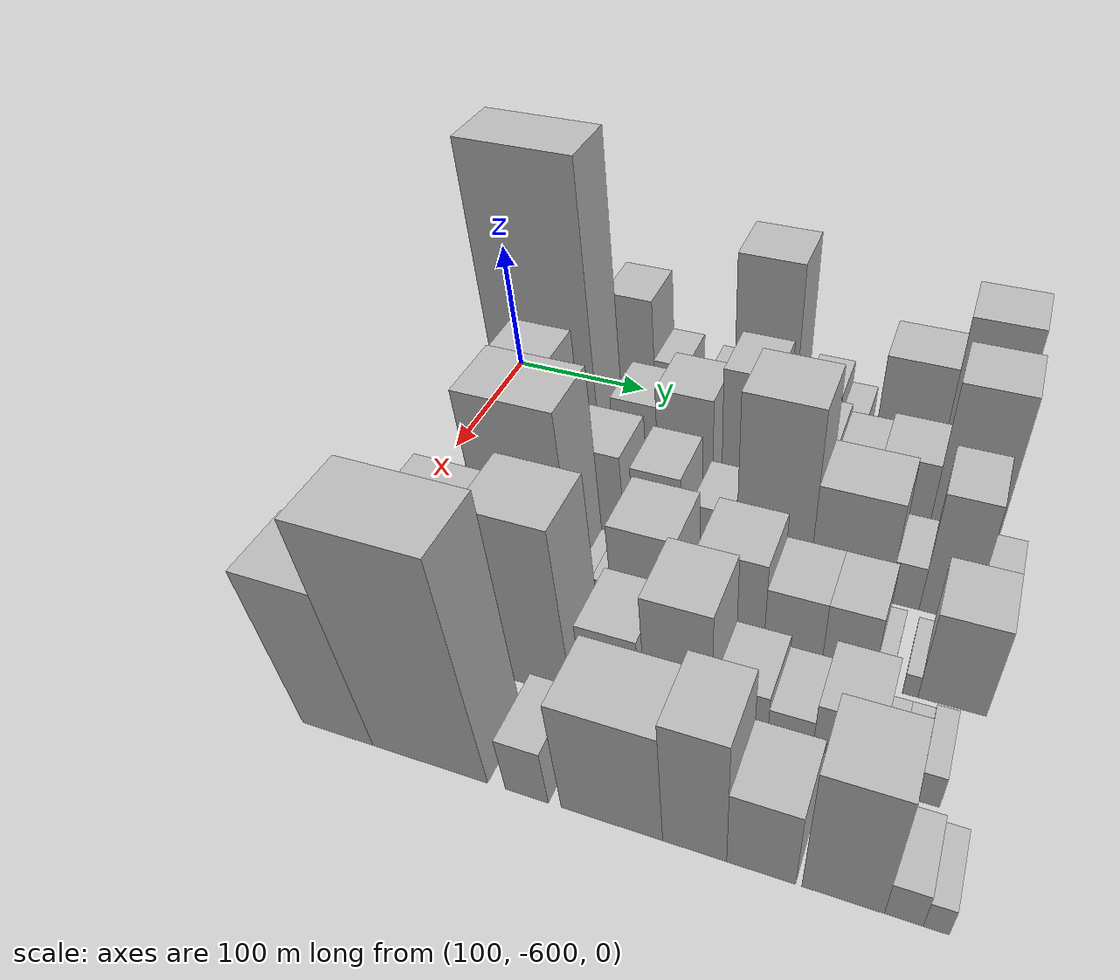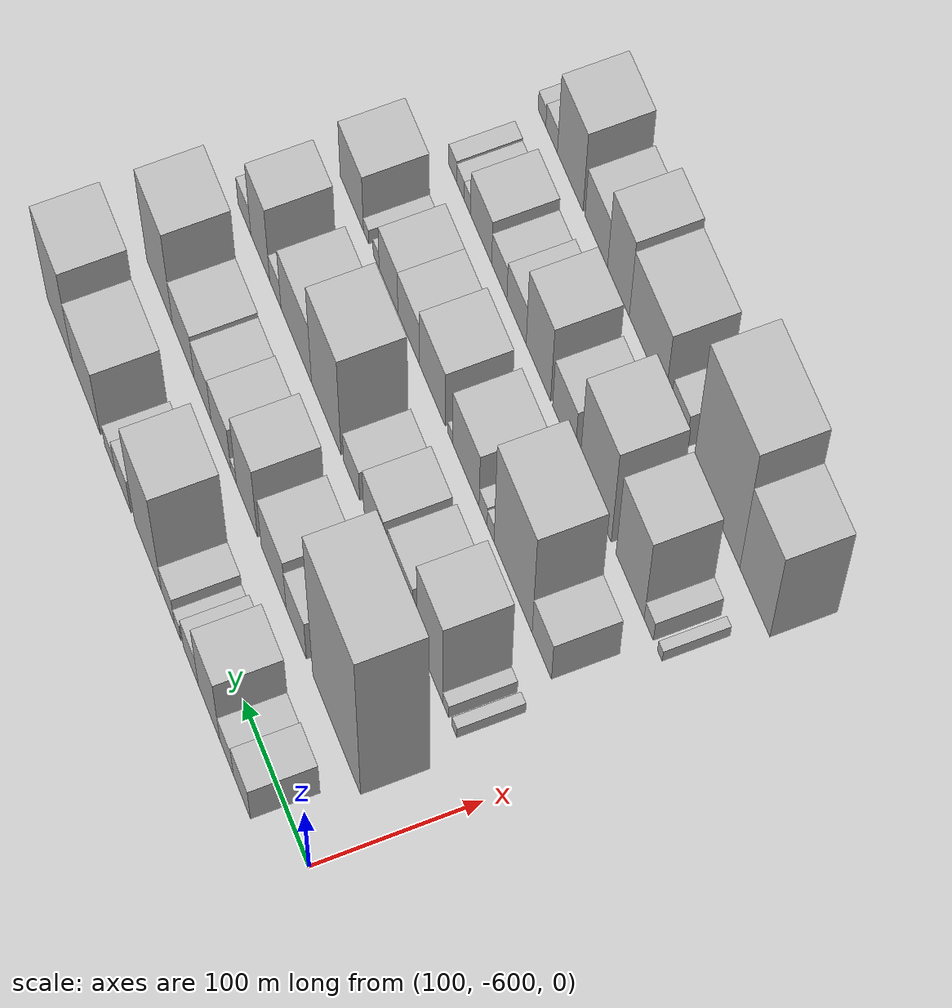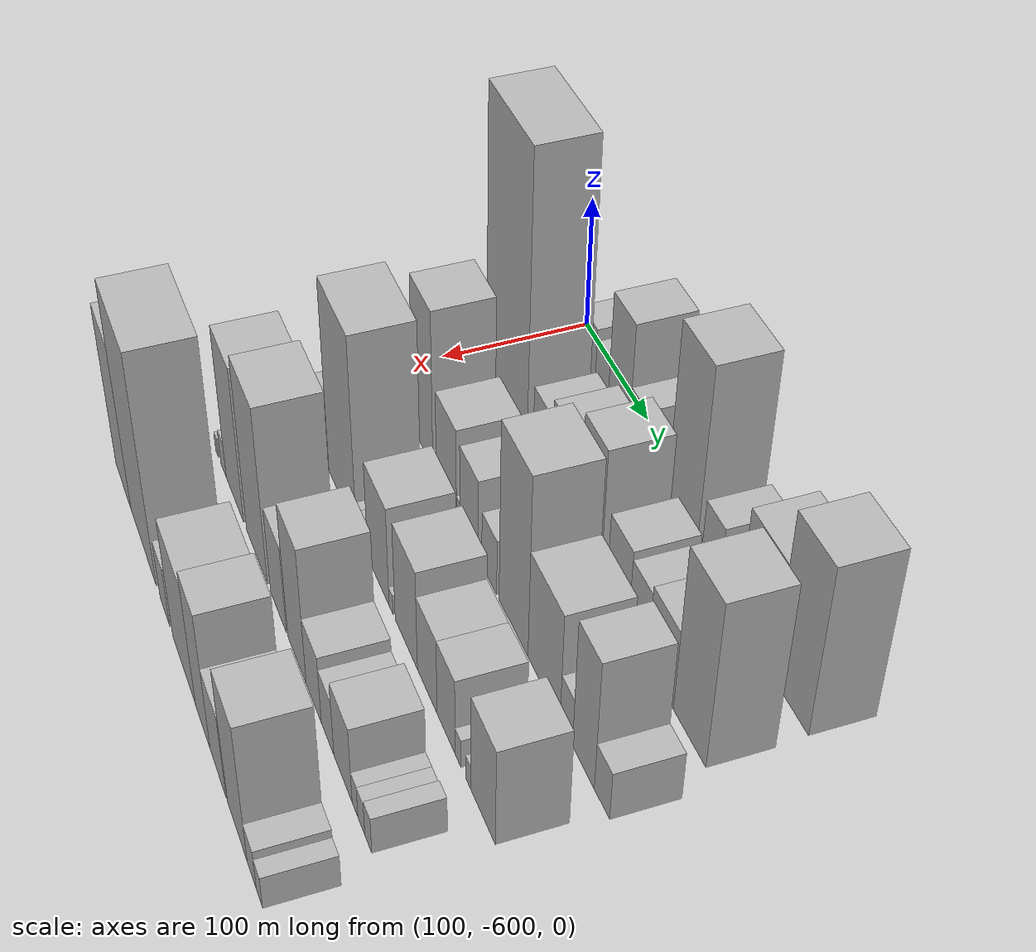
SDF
<sdf version="1.6">
 <world name="default">
  <model name="building_10">
   <static>1</static>
   <pose>100.0000 -550.6019 0 0.000000 0.000000 0.000000</pose>
   <link name="link">
    <pose>0 0 24.00 0 0 0</pose>
    <collision name="collision"><geometry><box><size>40.0000 26.1898 48.0000</size></box></geometry></collision>
    <visual name="visual">
     <cast_shadows>0</cast_shadows>
     <geometry><box><size>40.0000 26.1898 48.0000</size></box></geometry>
     <material>
      <script>
       <uri>model://HANNAS_wall/materials/scripts</uri>
       <uri>model://HANNAS_wall/materials/textures</uri>
       <name>vrc/HANNAS_wall</name>
      </script>
     </material>
    </visual>
   </link>
  </model>
  <model name="building_11">
   <static>1</static>
   <pose>100.0000 -526.9672 0 0.000000 0.000000 0.000000</pose>
   <link name="link">
    <pose>0 0 19.50 0 0 0</pose>
    <collision name="collision"><geometry><box><size>40.0000 21.0796 39.0000</size></box></geometry></collision>
    <visual name="visual">
     <cast_shadows>0</cast_shadows>
     <geometry><box><size>40.0000 21.0796 39.0000</size></box></geometry>
     <material>
      <script>
       <uri>model://HANNAS_wall/materials/scripts</uri>
       <uri>model://HANNAS_wall/materials/textures</uri>
       <name>vrc/HANNAS_wall</name>
      </script>
     </material>
    </visual>
   </link>
  </model>
  <model name="building_12">
   <static>1</static>
   <pose>100.0000 -499.6804 0 0.000000 0.000000 0.000000</pose>
   <link name="link">
    <pose>0 0 46.50 0 0 0</pose>
    <collision name="collision"><geometry><box><size>40.0000 33.4940 93.0000</size></box></geometry></collision>
    <visual name="visual">
     <cast_shadows>0</cast_shadows>
     <geometry><box><size>40.0000 33.4940 93.0000</size></box></geometry>
     <material>
      <script>
       <uri>model://HANNAS_wall/materials/scripts</uri>
       <uri>model://HANNAS_wall/materials/textures</uri>
       <name>vrc/HANNAS_wall</name>
      </script>
     </material>
    </visual>
   </link>
  </model>
  <model name="building_13">
   <static>1</static>
   <pose>100.0000 -471.1285 0 0.000000 0.000000 0.000000</pose>
   <link name="link">
    <pose>0 0 22.50 0 0 0</pose>
    <collision name="collision"><geometry><box><size>40.0000 23.6097 45.0000</size></box></geometry></collision>
    <visual name="visual">
     <cast_shadows>0</cast_shadows>
     <geometry><box><size>40.0000 23.6097 45.0000</size></box></geometry>
     <material>
      <script>
       <uri>model://HANNAS_wall/materials/scripts</uri>
       <uri>model://HANNAS_wall/materials/textures</uri>
       <name>vrc/HANNAS_wall</name>
      </script>
     </material>
    </visual>
   </link>
  </model>
  <model name="building_14">
   <static>1</static>
   <pose>100.0000 -450.2228 0 0.000000 0.000000 0.000000</pose>
   <link name="link">
    <pose>0 0 12.00 0 0 0</pose>
    <collision name="collision"><geometry><box><size>40.0000 10.2017 24.0000</size></box></geometry></collision>
    <visual name="visual">
     <cast_shadows>0</cast_shadows>
     <geometry><box><size>40.0000 10.2017 24.0000</size></box></geometry>
     <material>
      <script>
       <uri>model://HANNAS_wall/materials/scripts</uri>
       <uri>model://HANNAS_wall/materials/textures</uri>
       <name>vrc/HANNAS_wall</name>
      </script>
     </material>
    </visual>
   </link>
  </model>
  <model name="building_15">
   <static>1</static>
   <pose>100.0000 -434.9194 0 0.000000 0.000000 0.000000</pose>
   <link name="link">
    <pose>0 0 19.50 0 0 0</pose>
    <collision name="collision"><geometry><box><size>40.0000 20.4052 39.0000</size></box></geometry></collision>
    <visual name="visual">
     <cast_shadows>0</cast_shadows>
     <geometry><box><size>40.0000 20.4052 39.0000</size></box></geometry>
     <material>
      <script>
       <uri>model://HANNAS_wall/materials/scripts</uri>
       <uri>model://HANNAS_wall/materials/textures</uri>
       <name>vrc/HANNAS_wall</name>
      </script>
     </material>
    </visual>
   </link>
  </model>
  <model name="building_16">
   <static>1</static>
   <pose>100.0000 -403.1616 0 0.000000 0.000000 0.000000</pose>
   <link name="link">
    <pose>0 0 70.50 0 0 0</pose>
    <collision name="collision"><geometry><box><size>40.0000 43.1104 141.0000</size></box></geometry></collision>
    <visual name="visual">
     <cast_shadows>0</cast_shadows>
     <geometry><box><size>40.0000 43.1104 141.0000</size></box></geometry>
     <material>
      <script>
       <uri>model://HANNAS_wall/materials/scripts</uri>
       <uri>model://HANNAS_wall/materials/textures</uri>
       <name>vrc/HANNAS_wall</name>
      </script>
     </material>
    </visual>
   </link>
  </model>
  <model name="building_17">
   <static>1</static>
   <pose>100.0000 -363.1013 0 0.000000 0.000000 0.000000</pose>
   <link name="link">
    <pose>0 0 24.00 0 0 0</pose>
    <collision name="collision"><geometry><box><size>40.0000 25.0103 48.0000</size></box></geometry></collision>
    <visual name="visual">
     <cast_shadows>0</cast_shadows>
     <geometry><box><size>40.0000 25.0103 48.0000</size></box></geometry>
     <material>
      <script>
       <uri>model://HANNAS_wall/materials/scripts</uri>
       <uri>model://HANNAS_wall/materials/textures</uri>
       <name>vrc/HANNAS_wall</name>
      </script>
     </material>
    </visual>
   </link>
  </model>
  <model name="building_18">
   <static>1</static>
   <pose>100.0000 -341.6926 0 0.000000 0.000000 0.000000</pose>
   <link name="link">
    <pose>0 0 15.00 0 0 0</pose>
    <collision name="collision"><geometry><box><size>40.0000 17.8071 30.0000</size></box></geometry></collision>
    <visual name="visual">
     <cast_shadows>0</cast_shadows>
     <geometry><box><size>40.0000 17.8071 30.0000</size></box></geometry>
     <material>
      <script>
       <uri>model://HANNAS_wall/materials/scripts</uri>
       <uri>model://HANNAS_wall/materials/textures</uri>
       <name>vrc/HANNAS_wall</name>
      </script>
     </material>
    </visual>
   </link>
  </model>
  <model name="building_19">
   <static>1</static>
   <pose>100.0000 -303.3781 0 0.000000 0.000000 0.000000</pose>
   <link name="link">
    <pose>0 0 43.50 0 0 0</pose>
    <collision name="collision"><geometry><box><size>40.0000 44.8218 87.0000</size></box></geometry></collision>
    <visual name="visual">
     <cast_shadows>0</cast_shadows>
     <geometry><box><size>40.0000 44.8218 87.0000</size></box></geometry>
     <material>
      <script>
       <uri>model://HANNAS_wall/materials/scripts</uri>
       <uri>model://HANNAS_wall/materials/textures</uri>
       <name>vrc/HANNAS_wall</name>
      </script>
     </material>
    </visual>
   </link>
  </model>
  <model name="building_20">
   <static>1</static>
   <pose>100.0000 -259.4661 0 0.000000 0.000000 0.000000</pose>
   <link name="link">
    <pose>0 0 63.00 0 0 0</pose>
    <collision name="collision"><geometry><box><size>40.0000 43.0022 126.0000</size></box></geometry></collision>
    <visual name="visual">
     <cast_shadows>0</cast_shadows>
     <geometry><box><size>40.0000 43.0022 126.0000</size></box></geometry>
     <material>
      <script>
       <uri>model://HANNAS_wall/materials/scripts</uri>
       <uri>model://HANNAS_wall/materials/textures</uri>
       <name>vrc/HANNAS_wall</name>
      </script>
     </material>
    </visual>
   </link>
  </model>
  <model name="building_62">
   <static>1</static>
   <pose>160.0000 -536.2307 0 0.000000 0.000000 0.000000</pose>
   <link name="link">
    <pose>0 0 109.50 0 0 0</pose>
    <collision name="collision"><geometry><box><size>40.0000 72.4344 219.0000</size></box></geometry></collision>
    <visual name="visual">
     <cast_shadows>0</cast_shadows>
     <geometry><box><size>40.0000 72.4344 219.0000</size></box></geometry>
     <material>
      <script>
       <uri>model://HANNAS_wall/materials/scripts</uri>
       <uri>model://HANNAS_wall/materials/textures</uri>
       <name>vrc/HANNAS_wall</name>
      </script>
     </material>
    </visual>
   </link>
  </model>
  <model name="building_63">
   <static>1</static>
   <pose>160.0000 -474.3768 0 0.000000 0.000000 0.000000</pose>
   <link name="link">
    <pose>0 0 28.50 0 0 0</pose>
    <collision name="collision"><geometry><box><size>40.0000 31.2733 57.0000</size></box></geometry></collision>
    <visual name="visual">
     <cast_shadows>0</cast_shadows>
     <geometry><box><size>40.0000 31.2733 57.0000</size></box></geometry>
     <material>
      <script>
       <uri>model://HANNAS_wall/materials/scripts</uri>
       <uri>model://HANNAS_wall/materials/textures</uri>
       <name>vrc/HANNAS_wall</name>
      </script>
     </material>
    </visual>
   </link>
  </model>
  <model name="building_64">
   <static>1</static>
   <pose>160.0000 -439.3642 0 0.000000 0.000000 0.000000</pose>
   <link name="link">
    <pose>0 0 36.00 0 0 0</pose>
    <collision name="collision"><geometry><box><size>40.0000 38.7520 72.0000</size></box></geometry></collision>
    <visual name="visual">
     <cast_shadows>0</cast_shadows>
     <geometry><box><size>40.0000 38.7520 72.0000</size></box></geometry>
     <material>
      <script>
       <uri>model://HANNAS_wall/materials/scripts</uri>
       <uri>model://HANNAS_wall/materials/textures</uri>
       <name>vrc/HANNAS_wall</name>
      </script>
     </material>
    </visual>
   </link>
  </model>
  <model name="building_65">
   <static>1</static>
   <pose>160.0000 -397.3982 0 0.000000 0.000000 0.000000</pose>
   <link name="link">
    <pose>0 0 49.50 0 0 0</pose>
    <collision name="collision"><geometry><box><size>40.0000 33.1800 99.0000</size></box></geometry></collision>
    <visual name="visual">
     <cast_shadows>0</cast_shadows>
     <geometry><box><size>40.0000 33.1800 99.0000</size></box></geometry>
     <material>
      <script>
       <uri>model://HANNAS_wall/materials/scripts</uri>
       <uri>model://HANNAS_wall/materials/textures</uri>
       <name>vrc/HANNAS_wall</name>
      </script>
     </material>
    </visual>
   </link>
  </model>
  <model name="building_66">
   <static>1</static>
   <pose>160.0000 -376.4266 0 0.000000 0.000000 0.000000</pose>
   <link name="link">
    <pose>0 0 9.00 0 0 0</pose>
    <collision name="collision"><geometry><box><size>40.0000 8.7631 18.0000</size></box></geometry></collision>
    <visual name="visual">
     <cast_shadows>0</cast_shadows>
     <geometry><box><size>40.0000 8.7631 18.0000</size></box></geometry>
     <material>
      <script>
       <uri>model://HANNAS_wall/materials/scripts</uri>
       <uri>model://HANNAS_wall/materials/textures</uri>
       <name>vrc/HANNAS_wall</name>
      </script>
     </material>
    </visual>
   </link>
  </model>
  <model name="building_67">
   <static>1</static>
   <pose>160.0000 -356.3035 0 0.000000 0.000000 0.000000</pose>
   <link name="link">
    <pose>0 0 30.00 0 0 0</pose>
    <collision name="collision"><geometry><box><size>40.0000 31.4831 60.0000</size></box></geometry></collision>
    <visual name="visual">
     <cast_shadows>0</cast_shadows>
     <geometry><box><size>40.0000 31.4831 60.0000</size></box></geometry>
     <material>
      <script>
       <uri>model://HANNAS_wall/materials/scripts</uri>
       <uri>model://HANNAS_wall/materials/textures</uri>
       <name>vrc/HANNAS_wall</name>
      </script>
     </material>
    </visual>
   </link>
  </model>
  <model name="building_68">
   <static>1</static>
   <pose>160.0000 -326.9869 0 0.000000 0.000000 0.000000</pose>
   <link name="link">
    <pose>0 0 27.00 0 0 0</pose>
    <collision name="collision"><geometry><box><size>40.0000 27.1501 54.0000</size></box></geometry></collision>
    <visual name="visual">
     <cast_shadows>0</cast_shadows>
     <geometry><box><size>40.0000 27.1501 54.0000</size></box></geometry>
     <material>
      <script>
       <uri>model://HANNAS_wall/materials/scripts</uri>
       <uri>model://HANNAS_wall/materials/textures</uri>
       <name>vrc/HANNAS_wall</name>
      </script>
     </material>
    </visual>
   </link>
  </model>
  <model name="building_69">
   <static>1</static>
   <pose>160.0000 -295.8749 0 0.000000 0.000000 0.000000</pose>
   <link name="link">
    <pose>0 0 30.00 0 0 0</pose>
    <collision name="collision"><geometry><box><size>40.0000 35.0739 60.0000</size></box></geometry></collision>
    <visual name="visual">
     <cast_shadows>0</cast_shadows>
     <geometry><box><size>40.0000 35.0739 60.0000</size></box></geometry>
     <material>
      <script>
       <uri>model://HANNAS_wall/materials/scripts</uri>
       <uri>model://HANNAS_wall/materials/textures</uri>
       <name>vrc/HANNAS_wall</name>
      </script>
     </material>
    </visual>
   </link>
  </model>
  <model name="building_70">
   <static>1</static>
   <pose>160.0000 -257.3865 0 0.000000 0.000000 0.000000</pose>
   <link name="link">
    <pose>0 0 61.50 0 0 0</pose>
    <collision name="collision"><geometry><box><size>40.0000 41.9028 123.0000</size></box></geometry></collision>
    <visual name="visual">
     <cast_shadows>0</cast_shadows>
     <geometry><box><size>40.0000 41.9028 123.0000</size></box></geometry>
     <material>
      <script>
       <uri>model://HANNAS_wall/materials/scripts</uri>
       <uri>model://HANNAS_wall/materials/textures</uri>
       <name>vrc/HANNAS_wall</name>
      </script>
     </material>
    </visual>
   </link>
  </model>
  <model name="building_111">
   <static>1</static>
   <pose>220.0000 -557.8198 0 0.000000 0.000000 0.000000</pose>
   <link name="link">
    <pose>0 0 7.50 0 0 0</pose>
    <collision name="collision"><geometry><box><size>40.0000 7.2162 15.0000</size></box></geometry></collision>
    <visual name="visual">
     <cast_shadows>0</cast_shadows>
     <geometry><box><size>40.0000 7.2162 15.0000</size></box></geometry>
     <material>
      <script>
       <uri>model://HANNAS_wall/materials/scripts</uri>
       <uri>model://HANNAS_wall/materials/textures</uri>
       <name>vrc/HANNAS_wall</name>
      </script>
     </material>
    </visual>
   </link>
  </model>
  <model name="building_112">
   <static>1</static>
   <pose>220.0000 -544.7595 0 0.000000 0.000000 0.000000</pose>
   <link name="link">
    <pose>0 0 9.00 0 0 0</pose>
    <collision name="collision"><geometry><box><size>40.0000 8.9043 18.0000</size></box></geometry></collision>
    <visual name="visual">
     <cast_shadows>0</cast_shadows>
     <geometry><box><size>40.0000 8.9043 18.0000</size></box></geometry>
     <material>
      <script>
       <uri>model://HANNAS_wall/materials/scripts</uri>
       <uri>model://HANNAS_wall/materials/textures</uri>
       <name>vrc/HANNAS_wall</name>
      </script>
     </material>
    </visual>
   </link>
  </model>
  <model name="building_113">
   <static>1</static>
   <pose>220.0000 -521.1995 0 0.000000 0.000000 0.000000</pose>
   <link name="link">
    <pose>0 0 60.00 0 0 0</pose>
    <collision name="collision"><geometry><box><size>40.0000 38.2158 120.0000</size></box></geometry></collision>
    <visual name="visual">
     <cast_shadows>0</cast_shadows>
     <geometry><box><size>40.0000 38.2158 120.0000</size></box></geometry>
     <material>
      <script>
       <uri>model://HANNAS_wall/materials/scripts</uri>
       <uri>model://HANNAS_wall/materials/textures</uri>
       <name>vrc/HANNAS_wall</name>
      </script>
     </material>
    </visual>
   </link>
  </model>
  <model name="building_114">
   <static>1</static>
   <pose>220.0000 -498.8401 0 0.000000 0.000000 0.000000</pose>
   <link name="link">
    <pose>0 0 7.50 0 0 0</pose>
    <collision name="collision"><geometry><box><size>40.0000 6.5030 15.0000</size></box></geometry></collision>
    <visual name="visual">
     <cast_shadows>0</cast_shadows>
     <geometry><box><size>40.0000 6.5030 15.0000</size></box></geometry>
     <material>
      <script>
       <uri>model://HANNAS_wall/materials/scripts</uri>
       <uri>model://HANNAS_wall/materials/textures</uri>
       <name>vrc/HANNAS_wall</name>
      </script>
     </material>
    </visual>
   </link>
  </model>
  <model name="building_115">
   <static>1</static>
   <pose>220.0000 -477.1553 0 0.000000 0.000000 0.000000</pose>
   <link name="link">
    <pose>0 0 33.00 0 0 0</pose>
    <collision name="collision"><geometry><box><size>40.0000 36.8666 66.0000</size></box></geometry></collision>
    <visual name="visual">
     <cast_shadows>0</cast_shadows>
     <geometry><box><size>40.0000 36.8666 66.0000</size></box></geometry>
     <material>
      <script>
       <uri>model://HANNAS_wall/materials/scripts</uri>
       <uri>model://HANNAS_wall/materials/textures</uri>
       <name>vrc/HANNAS_wall</name>
      </script>
     </material>
    </visual>
   </link>
  </model>
  <model name="building_116">
   <static>1</static>
   <pose>220.0000 -455.5767 0 0.000000 0.000000 0.000000</pose>
   <link name="link">
    <pose>0 0 7.50 0 0 0</pose>
    <collision name="collision"><geometry><box><size>40.0000 6.2905 15.0000</size></box></geometry></collision>
    <visual name="visual">
     <cast_shadows>0</cast_shadows>
     <geometry><box><size>40.0000 6.2905 15.0000</size></box></geometry>
     <material>
      <script>
       <uri>model://HANNAS_wall/materials/scripts</uri>
       <uri>model://HANNAS_wall/materials/textures</uri>
       <name>vrc/HANNAS_wall</name>
      </script>
     </material>
    </visual>
   </link>
  </model>
  <model name="building_117">
   <static>1</static>
   <pose>220.0000 -436.4325 0 0.000000 0.000000 0.000000</pose>
   <link name="link">
    <pose>0 0 30.00 0 0 0</pose>
    <collision name="collision"><geometry><box><size>40.0000 31.9978 60.0000</size></box></geometry></collision>
    <visual name="visual">
     <cast_shadows>0</cast_shadows>
     <geometry><box><size>40.0000 31.9978 60.0000</size></box></geometry>
     <material>
      <script>
       <uri>model://HANNAS_wall/materials/scripts</uri>
       <uri>model://HANNAS_wall/materials/textures</uri>
       <name>vrc/HANNAS_wall</name>
      </script>
     </material>
    </visual>
   </link>
  </model>
  <model name="building_118">
   <static>1</static>
   <pose>220.0000 -402.0315 0 0.000000 0.000000 0.000000</pose>
   <link name="link">
    <pose>0 0 21.00 0 0 0</pose>
    <collision name="collision"><geometry><box><size>40.0000 24.8043 42.0000</size></box></geometry></collision>
    <visual name="visual">
     <cast_shadows>0</cast_shadows>
     <geometry><box><size>40.0000 24.8043 42.0000</size></box></geometry>
     <material>
      <script>
       <uri>model://HANNAS_wall/materials/scripts</uri>
       <uri>model://HANNAS_wall/materials/textures</uri>
       <name>vrc/HANNAS_wall</name>
      </script>
     </material>
    </visual>
   </link>
  </model>
  <model name="building_119">
   <static>1</static>
   <pose>220.0000 -362.5576 0 0.000000 0.000000 0.000000</pose>
   <link name="link">
    <pose>0 0 67.50 0 0 0</pose>
    <collision name="collision"><geometry><box><size>40.0000 46.1436 135.0000</size></box></geometry></collision>
    <visual name="visual">
     <cast_shadows>0</cast_shadows>
     <geometry><box><size>40.0000 46.1436 135.0000</size></box></geometry>
     <material>
      <script>
       <uri>model://HANNAS_wall/materials/scripts</uri>
       <uri>model://HANNAS_wall/materials/textures</uri>
       <name>vrc/HANNAS_wall</name>
      </script>
     </material>
    </visual>
   </link>
  </model>
  <model name="building_120">
   <static>1</static>
   <pose>220.0000 -315.3399 0 0.000000 0.000000 0.000000</pose>
   <link name="link">
    <pose>0 0 40.50 0 0 0</pose>
    <collision name="collision"><geometry><box><size>40.0000 48.2917 81.0000</size></box></geometry></collision>
    <visual name="visual">
     <cast_shadows>0</cast_shadows>
     <geometry><box><size>40.0000 48.2917 81.0000</size></box></geometry>
     <material>
      <script>
       <uri>model://HANNAS_wall/materials/scripts</uri>
       <uri>model://HANNAS_wall/materials/textures</uri>
       <name>vrc/HANNAS_wall</name>
      </script>
     </material>
    </visual>
   </link>
  </model>
  <model name="building_121">
   <static>1</static>
   <pose>220.0000 -282.1692 0 0.000000 0.000000 0.000000</pose>
   <link name="link">
    <pose>0 0 18.00 0 0 0</pose>
    <collision name="collision"><geometry><box><size>40.0000 18.0497 36.0000</size></box></geometry></collision>
    <visual name="visual">
     <cast_shadows>0</cast_shadows>
     <geometry><box><size>40.0000 18.0497 36.0000</size></box></geometry>
     <material>
      <script>
       <uri>model://HANNAS_wall/materials/scripts</uri>
       <uri>model://HANNAS_wall/materials/textures</uri>
       <name>vrc/HANNAS_wall</name>
      </script>
     </material>
    </visual>
   </link>
  </model>
  <model name="building_122">
   <static>1</static>
   <pose>220.0000 -258.0157 0 0.000000 0.000000 0.000000</pose>
   <link name="link">
    <pose>0 0 48.00 0 0 0</pose>
    <collision name="collision"><geometry><box><size>40.0000 30.2573 96.0000</size></box></geometry></collision>
    <visual name="visual">
     <cast_shadows>0</cast_shadows>
     <geometry><box><size>40.0000 30.2573 96.0000</size></box></geometry>
     <material>
      <script>
       <uri>model://HANNAS_wall/materials/scripts</uri>
       <uri>model://HANNAS_wall/materials/textures</uri>
       <name>vrc/HANNAS_wall</name>
      </script>
     </material>
    </visual>
   </link>
  </model>
  <model name="building_123">
   <static>1</static>
   <pose>220.0000 -232.5340 0 0.000000 0.000000 0.000000</pose>
   <link name="link">
    <pose>0 0 18.00 0 0 0</pose>
    <collision name="collision"><geometry><box><size>40.0000 20.7061 36.0000</size></box></geometry></collision>
    <visual name="visual">
     <cast_shadows>0</cast_shadows>
     <geometry><box><size>40.0000 20.7061 36.0000</size></box></geometry>
     <material>
      <script>
       <uri>model://HANNAS_wall/materials/scripts</uri>
       <uri>model://HANNAS_wall/materials/textures</uri>
       <name>vrc/HANNAS_wall</name>
      </script>
     </material>
    </visual>
   </link>
  </model>
  <model name="building_169">
   <static>1</static>
   <pose>280.0000 -534.9068 0 0.000000 0.000000 0.000000</pose>
   <link name="link">
    <pose>0 0 27.00 0 0 0</pose>
    <collision name="collision"><geometry><box><size>40.0000 28.3690 54.0000</size></box></geometry></collision>
    <visual name="visual">
     <cast_shadows>0</cast_shadows>
     <geometry><box><size>40.0000 28.3690 54.0000</size></box></geometry>
     <material>
      <script>
       <uri>model://HANNAS_wall/materials/scripts</uri>
       <uri>model://HANNAS_wall/materials/textures</uri>
       <name>vrc/HANNAS_wall</name>
      </script>
     </material>
    </visual>
   </link>
  </model>
  <model name="building_170">
   <static>1</static>
   <pose>280.0000 -492.4979 0 0.000000 0.000000 0.000000</pose>
   <link name="link">
    <pose>0 0 73.50 0 0 0</pose>
    <collision name="collision"><geometry><box><size>40.0000 56.4487 147.0000</size></box></geometry></collision>
    <visual name="visual">
     <cast_shadows>0</cast_shadows>
     <geometry><box><size>40.0000 56.4487 147.0000</size></box></geometry>
     <material>
      <script>
       <uri>model://HANNAS_wall/materials/scripts</uri>
       <uri>model://HANNAS_wall/materials/textures</uri>
       <name>vrc/HANNAS_wall</name>
      </script>
     </material>
    </visual>
   </link>
  </model>
  <model name="building_171">
   <static>1</static>
   <pose>280.0000 -459.0433 0 0.000000 0.000000 0.000000</pose>
   <link name="link">
    <pose>0 0 12.00 0 0 0</pose>
    <collision name="collision"><geometry><box><size>40.0000 10.4605 24.0000</size></box></geometry></collision>
    <visual name="visual">
     <cast_shadows>0</cast_shadows>
     <geometry><box><size>40.0000 10.4605 24.0000</size></box></geometry>
     <material>
      <script>
       <uri>model://HANNAS_wall/materials/scripts</uri>
       <uri>model://HANNAS_wall/materials/textures</uri>
       <name>vrc/HANNAS_wall</name>
      </script>
     </material>
    </visual>
   </link>
  </model>
  <model name="building_172">
   <static>1</static>
   <pose>280.0000 -447.7941 0 0.000000 0.000000 0.000000</pose>
   <link name="link">
    <pose>0 0 13.50 0 0 0</pose>
    <collision name="collision"><geometry><box><size>40.0000 12.0380 27.0000</size></box></geometry></collision>
    <visual name="visual">
     <cast_shadows>0</cast_shadows>
     <geometry><box><size>40.0000 12.0380 27.0000</size></box></geometry>
     <material>
      <script>
       <uri>model://HANNAS_wall/materials/scripts</uri>
       <uri>model://HANNAS_wall/materials/textures</uri>
       <name>vrc/HANNAS_wall</name>
      </script>
     </material>
    </visual>
   </link>
  </model>
  <model name="building_173">
   <static>1</static>
   <pose>280.0000 -421.7005 0 0.000000 0.000000 0.000000</pose>
   <link name="link">
    <pose>0 0 37.50 0 0 0</pose>
    <collision name="collision"><geometry><box><size>40.0000 40.1491 75.0000</size></box></geometry></collision>
    <visual name="visual">
     <cast_shadows>0</cast_shadows>
     <geometry><box><size>40.0000 40.1491 75.0000</size></box></geometry>
     <material>
      <script>
       <uri>model://HANNAS_wall/materials/scripts</uri>
       <uri>model://HANNAS_wall/materials/textures</uri>
       <name>vrc/HANNAS_wall</name>
      </script>
     </material>
    </visual>
   </link>
  </model>
  <model name="building_174">
   <static>1</static>
   <pose>280.0000 -398.0292 0 0.000000 0.000000 0.000000</pose>
   <link name="link">
    <pose>0 0 7.50 0 0 0</pose>
    <collision name="collision"><geometry><box><size>40.0000 7.1934 15.0000</size></box></geometry></collision>
    <visual name="visual">
     <cast_shadows>0</cast_shadows>
     <geometry><box><size>40.0000 7.1934 15.0000</size></box></geometry>
     <material>
      <script>
       <uri>model://HANNAS_wall/materials/scripts</uri>
       <uri>model://HANNAS_wall/materials/textures</uri>
       <name>vrc/HANNAS_wall</name>
      </script>
     </material>
    </visual>
   </link>
  </model>
  <model name="building_175">
   <static>1</static>
   <pose>280.0000 -370.6465 0 0.000000 0.000000 0.000000</pose>
   <link name="link">
    <pose>0 0 37.50 0 0 0</pose>
    <collision name="collision"><geometry><box><size>40.0000 39.5720 75.0000</size></box></geometry></collision>
    <visual name="visual">
     <cast_shadows>0</cast_shadows>
     <geometry><box><size>40.0000 39.5720 75.0000</size></box></geometry>
     <material>
      <script>
       <uri>model://HANNAS_wall/materials/scripts</uri>
       <uri>model://HANNAS_wall/materials/textures</uri>
       <name>vrc/HANNAS_wall</name>
      </script>
     </material>
    </visual>
   </link>
  </model>
  <model name="building_176">
   <static>1</static>
   <pose>280.0000 -334.2251 0 0.000000 0.000000 0.000000</pose>
   <link name="link">
    <pose>0 0 28.50 0 0 0</pose>
    <collision name="collision"><geometry><box><size>40.0000 33.2708 57.0000</size></box></geometry></collision>
    <visual name="visual">
     <cast_shadows>0</cast_shadows>
     <geometry><box><size>40.0000 33.2708 57.0000</size></box></geometry>
     <material>
      <script>
       <uri>model://HANNAS_wall/materials/scripts</uri>
       <uri>model://HANNAS_wall/materials/textures</uri>
       <name>vrc/HANNAS_wall</name>
      </script>
     </material>
    </visual>
   </link>
  </model>
  <model name="building_177">
   <static>1</static>
   <pose>280.0000 -302.9602 0 0.000000 0.000000 0.000000</pose>
   <link name="link">
    <pose>0 0 28.50 0 0 0</pose>
    <collision name="collision"><geometry><box><size>40.0000 29.2590 57.0000</size></box></geometry></collision>
    <visual name="visual">
     <cast_shadows>0</cast_shadows>
     <geometry><box><size>40.0000 29.2590 57.0000</size></box></geometry>
     <material>
      <script>
       <uri>model://HANNAS_wall/materials/scripts</uri>
       <uri>model://HANNAS_wall/materials/textures</uri>
       <name>vrc/HANNAS_wall</name>
      </script>
     </material>
    </visual>
   </link>
  </model>
  <model name="building_178">
   <static>1</static>
   <pose>280.0000 -283.7022 0 0.000000 0.000000 0.000000</pose>
   <link name="link">
    <pose>0 0 10.50 0 0 0</pose>
    <collision name="collision"><geometry><box><size>40.0000 9.2569 21.0000</size></box></geometry></collision>
    <visual name="visual">
     <cast_shadows>0</cast_shadows>
     <geometry><box><size>40.0000 9.2569 21.0000</size></box></geometry>
     <material>
      <script>
       <uri>model://HANNAS_wall/materials/scripts</uri>
       <uri>model://HANNAS_wall/materials/textures</uri>
       <name>vrc/HANNAS_wall</name>
      </script>
     </material>
    </visual>
   </link>
  </model>
  <model name="building_179">
   <static>1</static>
   <pose>280.0000 -267.8656 0 0.000000 0.000000 0.000000</pose>
   <link name="link">
    <pose>0 0 9.00 0 0 0</pose>
    <collision name="collision"><geometry><box><size>40.0000 8.4162 18.0000</size></box></geometry></collision>
    <visual name="visual">
     <cast_shadows>0</cast_shadows>
     <geometry><box><size>40.0000 8.4162 18.0000</size></box></geometry>
     <material>
      <script>
       <uri>model://HANNAS_wall/materials/scripts</uri>
       <uri>model://HANNAS_wall/materials/textures</uri>
       <name>vrc/HANNAS_wall</name>
      </script>
     </material>
    </visual>
   </link>
  </model>
  <model name="building_180">
   <static>1</static>
   <pose>280.0000 -245.3023 0 0.000000 0.000000 0.000000</pose>
   <link name="link">
    <pose>0 0 36.00 0 0 0</pose>
    <collision name="collision"><geometry><box><size>40.0000 36.7104 72.0000</size></box></geometry></collision>
    <visual name="visual">
     <cast_shadows>0</cast_shadows>
     <geometry><box><size>40.0000 36.7104 72.0000</size></box></geometry>
     <material>
      <script>
       <uri>model://HANNAS_wall/materials/scripts</uri>
       <uri>model://HANNAS_wall/materials/textures</uri>
       <name>vrc/HANNAS_wall</name>
      </script>
     </material>
    </visual>
   </link>
  </model>
  <model name="building_232">
   <static>1</static>
   <pose>340.0000 -558.0300 0 0.000000 0.000000 0.000000</pose>
   <link name="link">
    <pose>0 0 7.50 0 0 0</pose>
    <collision name="collision"><geometry><box><size>40.0000 6.7359 15.0000</size></box></geometry></collision>
    <visual name="visual">
     <cast_shadows>0</cast_shadows>
     <geometry><box><size>40.0000 6.7359 15.0000</size></box></geometry>
     <material>
      <script>
       <uri>model://HANNAS_wall/materials/scripts</uri>
       <uri>model://HANNAS_wall/materials/textures</uri>
       <name>vrc/HANNAS_wall</name>
      </script>
     </material>
    </visual>
   </link>
  </model>
  <model name="building_233">
   <static>1</static>
   <pose>340.0000 -542.0416 0 0.000000 0.000000 0.000000</pose>
   <link name="link">
    <pose>0 0 13.50 0 0 0</pose>
    <collision name="collision"><geometry><box><size>40.0000 13.2410 27.0000</size></box></geometry></collision>
    <visual name="visual">
     <cast_shadows>0</cast_shadows>
     <geometry><box><size>40.0000 13.2410 27.0000</size></box></geometry>
     <material>
      <script>
       <uri>model://HANNAS_wall/materials/scripts</uri>
       <uri>model://HANNAS_wall/materials/textures</uri>
       <name>vrc/HANNAS_wall</name>
      </script>
     </material>
    </visual>
   </link>
  </model>
  <model name="building_234">
   <static>1</static>
   <pose>340.0000 -514.9768 0 0.000000 0.000000 0.000000</pose>
   <link name="link">
    <pose>0 0 58.50 0 0 0</pose>
    <collision name="collision"><geometry><box><size>40.0000 40.8887 117.0000</size></box></geometry></collision>
    <visual name="visual">
     <cast_shadows>0</cast_shadows>
     <geometry><box><size>40.0000 40.8887 117.0000</size></box></geometry>
     <material>
      <script>
       <uri>model://HANNAS_wall/materials/scripts</uri>
       <uri>model://HANNAS_wall/materials/textures</uri>
       <name>vrc/HANNAS_wall</name>
      </script>
     </material>
    </visual>
   </link>
  </model>
  <model name="building_235">
   <static>1</static>
   <pose>340.0000 -464.3099 0 0.000000 0.000000 0.000000</pose>
   <link name="link">
    <pose>0 0 66.00 0 0 0</pose>
    <collision name="collision"><geometry><box><size>40.0000 46.4451 132.0000</size></box></geometry></collision>
    <visual name="visual">
     <cast_shadows>0</cast_shadows>
     <geometry><box><size>40.0000 46.4451 132.0000</size></box></geometry>
     <material>
      <script>
       <uri>model://HANNAS_wall/materials/scripts</uri>
       <uri>model://HANNAS_wall/materials/textures</uri>
       <name>vrc/HANNAS_wall</name>
      </script>
     </material>
    </visual>
   </link>
  </model>
  <model name="building_236">
   <static>1</static>
   <pose>340.0000 -417.4967 0 0.000000 0.000000 0.000000</pose>
   <link name="link">
    <pose>0 0 33.00 0 0 0</pose>
    <collision name="collision"><geometry><box><size>40.0000 33.1814 66.0000</size></box></geometry></collision>
    <visual name="visual">
     <cast_shadows>0</cast_shadows>
     <geometry><box><size>40.0000 33.1814 66.0000</size></box></geometry>
     <material>
      <script>
       <uri>model://HANNAS_wall/materials/scripts</uri>
       <uri>model://HANNAS_wall/materials/textures</uri>
       <name>vrc/HANNAS_wall</name>
      </script>
     </material>
    </visual>
   </link>
  </model>
  <model name="building_237">
   <static>1</static>
   <pose>340.0000 -379.5365 0 0.000000 0.000000 0.000000</pose>
   <link name="link">
    <pose>0 0 51.00 0 0 0</pose>
    <collision name="collision"><geometry><box><size>40.0000 36.7388 102.0000</size></box></geometry></collision>
    <visual name="visual">
     <cast_shadows>0</cast_shadows>
     <geometry><box><size>40.0000 36.7388 102.0000</size></box></geometry>
     <material>
      <script>
       <uri>model://HANNAS_wall/materials/scripts</uri>
       <uri>model://HANNAS_wall/materials/textures</uri>
       <name>vrc/HANNAS_wall</name>
      </script>
     </material>
    </visual>
   </link>
  </model>
  <model name="building_238">
   <static>1</static>
   <pose>340.0000 -346.5858 0 0.000000 0.000000 0.000000</pose>
   <link name="link">
    <pose>0 0 25.50 0 0 0</pose>
    <collision name="collision"><geometry><box><size>40.0000 29.1628 51.0000</size></box></geometry></collision>
    <visual name="visual">
     <cast_shadows>0</cast_shadows>
     <geometry><box><size>40.0000 29.1628 51.0000</size></box></geometry>
     <material>
      <script>
       <uri>model://HANNAS_wall/materials/scripts</uri>
       <uri>model://HANNAS_wall/materials/textures</uri>
       <name>vrc/HANNAS_wall</name>
      </script>
     </material>
    </visual>
   </link>
  </model>
  <model name="building_239">
   <static>1</static>
   <pose>340.0000 -320.3809 0 0.000000 0.000000 0.000000</pose>
   <link name="link">
    <pose>0 0 21.00 0 0 0</pose>
    <collision name="collision"><geometry><box><size>40.0000 23.2470 42.0000</size></box></geometry></collision>
    <visual name="visual">
     <cast_shadows>0</cast_shadows>
     <geometry><box><size>40.0000 23.2470 42.0000</size></box></geometry>
     <material>
      <script>
       <uri>model://HANNAS_wall/materials/scripts</uri>
       <uri>model://HANNAS_wall/materials/textures</uri>
       <name>vrc/HANNAS_wall</name>
      </script>
     </material>
    </visual>
   </link>
  </model>
  <model name="building_240">
   <static>1</static>
   <pose>340.0000 -292.4605 0 0.000000 0.000000 0.000000</pose>
   <link name="link">
    <pose>0 0 28.50 0 0 0</pose>
    <collision name="collision"><geometry><box><size>40.0000 32.5938 57.0000</size></box></geometry></collision>
    <visual name="visual">
     <cast_shadows>0</cast_shadows>
     <geometry><box><size>40.0000 32.5938 57.0000</size></box></geometry>
     <material>
      <script>
       <uri>model://HANNAS_wall/materials/scripts</uri>
       <uri>model://HANNAS_wall/materials/textures</uri>
       <name>vrc/HANNAS_wall</name>
      </script>
     </material>
    </visual>
   </link>
  </model>
  <model name="building_241">
   <static>1</static>
   <pose>340.0000 -271.1551 0 0.000000 0.000000 0.000000</pose>
   <link name="link">
    <pose>0 0 12.00 0 0 0</pose>
    <collision name="collision"><geometry><box><size>40.0000 10.0171 24.0000</size></box></geometry></collision>
    <visual name="visual">
     <cast_shadows>0</cast_shadows>
     <geometry><box><size>40.0000 10.0171 24.0000</size></box></geometry>
     <material>
      <script>
       <uri>model://HANNAS_wall/materials/scripts</uri>
       <uri>model://HANNAS_wall/materials/textures</uri>
       <name>vrc/HANNAS_wall</name>
      </script>
     </material>
    </visual>
   </link>
  </model>
  <model name="building_242">
   <static>1</static>
   <pose>340.0000 -260.2138 0 0.000000 0.000000 0.000000</pose>
   <link name="link">
    <pose>0 0 12.00 0 0 0</pose>
    <collision name="collision"><geometry><box><size>40.0000 11.8654 24.0000</size></box></geometry></collision>
    <visual name="visual">
     <cast_shadows>0</cast_shadows>
     <geometry><box><size>40.0000 11.8654 24.0000</size></box></geometry>
     <material>
      <script>
       <uri>model://HANNAS_wall/materials/scripts</uri>
       <uri>model://HANNAS_wall/materials/textures</uri>
       <name>vrc/HANNAS_wall</name>
      </script>
     </material>
    </visual>
   </link>
  </model>
  <model name="building_243">
   <static>1</static>
   <pose>340.0000 -248.4585 0 0.000000 0.000000 0.000000</pose>
   <link name="link">
    <pose>0 0 13.50 0 0 0</pose>
    <collision name="collision"><geometry><box><size>40.0000 11.6452 27.0000</size></box></geometry></collision>
    <visual name="visual">
     <cast_shadows>0</cast_shadows>
     <geometry><box><size>40.0000 11.6452 27.0000</size></box></geometry>
     <material>
      <script>
       <uri>model://HANNAS_wall/materials/scripts</uri>
       <uri>model://HANNAS_wall/materials/textures</uri>
       <name>vrc/HANNAS_wall</name>
      </script>
     </material>
    </visual>
   </link>
  </model>
  <model name="building_290">
   <static>1</static>
   <pose>400.0000 -548.6048 0 0.000000 0.000000 0.000000</pose>
   <link name="link">
    <pose>0 0 61.50 0 0 0</pose>
    <collision name="collision"><geometry><box><size>40.0000 42.6957 123.0000</size></box></geometry></collision>
    <visual name="visual">
     <cast_shadows>0</cast_shadows>
     <geometry><box><size>40.0000 42.6957 123.0000</size></box></geometry>
     <material>
      <script>
       <uri>model://HANNAS_wall/materials/scripts</uri>
       <uri>model://HANNAS_wall/materials/textures</uri>
       <name>vrc/HANNAS_wall</name>
      </script>
     </material>
    </visual>
   </link>
  </model>
  <model name="building_291">
   <static>1</static>
   <pose>400.0000 -493.9800 0 0.000000 0.000000 0.000000</pose>
   <link name="link">
    <pose>0 0 85.50 0 0 0</pose>
    <collision name="collision"><geometry><box><size>40.0000 66.5537 171.0000</size></box></geometry></collision>
    <visual name="visual">
     <cast_shadows>0</cast_shadows>
     <geometry><box><size>40.0000 66.5537 171.0000</size></box></geometry>
     <material>
      <script>
       <uri>model://HANNAS_wall/materials/scripts</uri>
       <uri>model://HANNAS_wall/materials/textures</uri>
       <name>vrc/HANNAS_wall</name>
      </script>
     </material>
    </visual>
   </link>
  </model>
  <model name="building_292">
   <static>1</static>
   <pose>400.0000 -438.8826 0 0.000000 0.000000 0.000000</pose>
   <link name="link">
    <pose>0 0 22.50 0 0 0</pose>
    <collision name="collision"><geometry><box><size>40.0000 23.6412 45.0000</size></box></geometry></collision>
    <visual name="visual">
     <cast_shadows>0</cast_shadows>
     <geometry><box><size>40.0000 23.6412 45.0000</size></box></geometry>
     <material>
      <script>
       <uri>model://HANNAS_wall/materials/scripts</uri>
       <uri>model://HANNAS_wall/materials/textures</uri>
       <name>vrc/HANNAS_wall</name>
      </script>
     </material>
    </visual>
   </link>
  </model>
  <model name="building_293">
   <static>1</static>
   <pose>400.0000 -393.3114 0 0.000000 0.000000 0.000000</pose>
   <link name="link">
    <pose>0 0 45.00 0 0 0</pose>
    <collision name="collision"><geometry><box><size>40.0000 53.5011 90.0000</size></box></geometry></collision>
    <visual name="visual">
     <cast_shadows>0</cast_shadows>
     <geometry><box><size>40.0000 53.5011 90.0000</size></box></geometry>
     <material>
      <script>
       <uri>model://HANNAS_wall/materials/scripts</uri>
       <uri>model://HANNAS_wall/materials/textures</uri>
       <name>vrc/HANNAS_wall</name>
      </script>
     </material>
    </visual>
   </link>
  </model>
  <model name="building_294">
   <static>1</static>
   <pose>400.0000 -350.3670 0 0.000000 0.000000 0.000000</pose>
   <link name="link">
    <pose>0 0 51.00 0 0 0</pose>
    <collision name="collision"><geometry><box><size>40.0000 32.3878 102.0000</size></box></geometry></collision>
    <visual name="visual">
     <cast_shadows>0</cast_shadows>
     <geometry><box><size>40.0000 32.3878 102.0000</size></box></geometry>
     <material>
      <script>
       <uri>model://HANNAS_wall/materials/scripts</uri>
       <uri>model://HANNAS_wall/materials/textures</uri>
       <name>vrc/HANNAS_wall</name>
      </script>
     </material>
    </visual>
   </link>
  </model>
  <model name="building_295">
   <static>1</static>
   <pose>400.0000 -317.2805 0 0.000000 0.000000 0.000000</pose>
   <link name="link">
    <pose>0 0 31.50 0 0 0</pose>
    <collision name="collision"><geometry><box><size>40.0000 33.7852 63.0000</size></box></geometry></collision>
    <visual name="visual">
     <cast_shadows>0</cast_shadows>
     <geometry><box><size>40.0000 33.7852 63.0000</size></box></geometry>
     <material>
      <script>
       <uri>model://HANNAS_wall/materials/scripts</uri>
       <uri>model://HANNAS_wall/materials/textures</uri>
       <name>vrc/HANNAS_wall</name>
      </script>
     </material>
    </visual>
   </link>
  </model>
  <model name="building_296">
   <static>1</static>
   <pose>400.0000 -277.9277 0 0.000000 0.000000 0.000000</pose>
   <link name="link">
    <pose>0 0 51.00 0 0 0</pose>
    <collision name="collision"><geometry><box><size>40.0000 38.9204 102.0000</size></box></geometry></collision>
    <visual name="visual">
     <cast_shadows>0</cast_shadows>
     <geometry><box><size>40.0000 38.9204 102.0000</size></box></geometry>
     <material>
      <script>
       <uri>model://HANNAS_wall/materials/scripts</uri>
       <uri>model://HANNAS_wall/materials/textures</uri>
       <name>vrc/HANNAS_wall</name>
      </script>
     </material>
    </visual>
   </link>
  </model>
  <model name="building_297">
   <static>1</static>
   <pose>400.0000 -249.6127 0 0.000000 0.000000 0.000000</pose>
   <link name="link">
    <pose>0 0 15.00 0 0 0</pose>
    <collision name="collision"><geometry><box><size>40.0000 17.7096 30.0000</size></box></geometry></collision>
    <visual name="visual">
     <cast_shadows>0</cast_shadows>
     <geometry><box><size>40.0000 17.7096 30.0000</size></box></geometry>
     <material>
      <script>
       <uri>model://HANNAS_wall/materials/scripts</uri>
       <uri>model://HANNAS_wall/materials/textures</uri>
       <name>vrc/HANNAS_wall</name>
      </script>
     </material>
    </visual>
   </link>
  </model>
  <model name="building_298">
   <static>1</static>
   <pose>400.0000 -234.8704 0 0.000000 0.000000 0.000000</pose>
   <link name="link">
    <pose>0 0 12.00 0 0 0</pose>
    <collision name="collision"><geometry><box><size>40.0000 11.7751 24.0000</size></box></geometry></collision>
    <visual name="visual">
     <cast_shadows>0</cast_shadows>
     <geometry><box><size>40.0000 11.7751 24.0000</size></box></geometry>
     <material>
      <script>
       <uri>model://HANNAS_wall/materials/scripts</uri>
       <uri>model://HANNAS_wall/materials/textures</uri>
       <name>vrc/HANNAS_wall</name>
      </script>
     </material>
    </visual>
   </link>
  </model>
 </world>
</sdf>
